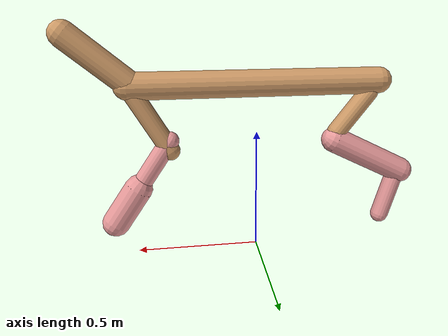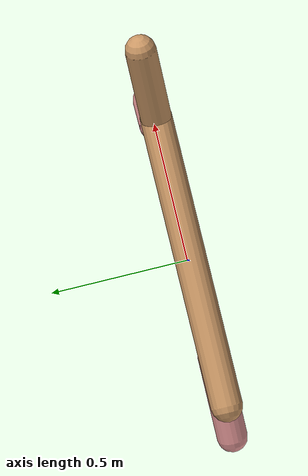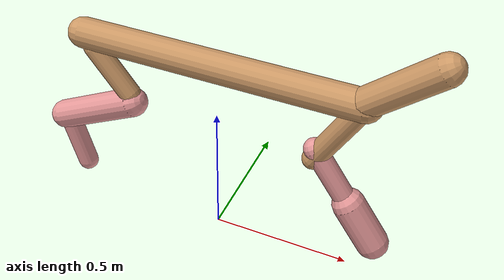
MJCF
<?xml version="1.0" encoding="utf-8"?>
<mujoco model="cheetah">
	<compiler angle="radian" coordinate="local" inertiafromgeom="true" settotalmass="14"></compiler>
	<default>
		<joint armature=".1" damping="0.010273685319781877" limited="true" solimplimit="0 .8 .03" solreflimit=".02 1" stiffness="8.665681657252332"></joint>
		<geom conaffinity="0" condim="3" contype="1" friction="0.8703187810477577 0.07612955160728259 0.10697934570410639" rgba="0.8 0.6 .4 1" solimp="0.0 0.8 0.01" solref="0.02 1"></geom>
		<motor ctrllimited="true" ctrlrange="-1 1"></motor>
	</default>
	<size nstack="300000" nuser_geom="1"></size>
	<option gravity="0 0 -9.81" timestep="0.01"></option>
	<worldbody>
		<body name="torso" pos="0 0 .7">
			<joint armature="0" axis="1 0 0" damping="0.0" limited="false" name="ignorex" pos="0 0 0" stiffness="0.0" type="slide"></joint>
			<joint armature="0" axis="0 0 1" damping="0.0" limited="false" name="ignorez" pos="0 0 0" stiffness="0.0" type="slide"></joint>
			<joint armature="0" axis="0 1 0" damping="0.0" limited="false" name="ignorey" pos="0 0 0" stiffness="0.0" type="hinge"></joint>
			<geom fromto="-.5 0 0 .5 0 0" name="torso" size="0.05426691680335314" type="capsule"></geom>
			<geom axisangle="0 1 0 .87" name="head" pos=".6 0 .1" size="0.052460073602123396 0.14747933331017135" type="capsule"></geom>
			<body name="bthigh" pos="-.5 0 0">
				<joint axis="0 1 0" damping="6.476735107402284" name="bthigh" pos="0 0 0" range="-.52 1.05" stiffness="174.3106806107034" type="hinge"></joint>
				<geom axisangle="0 1 0 -3.8" name="bthigh" pos=".1 0 -.13" size="0.038934187155212144 0.10331285681432277" type="capsule"></geom>
				<body name="bshin" pos=".16 0 -.25">
					<joint axis="0 1 0" damping="3.200500054256073" name="bshin" pos="0 0 0" range="-.785 .785" stiffness="152.8804773386579" type="hinge"></joint>
					<geom axisangle="0 1 0 -2.03" name="bshin" pos="-.14 0 -.07" rgba="0.9 0.6 0.6 1" size="0.05344754765038982 0.16856001501289278" type="capsule"></geom>
					<body name="bfoot" pos="-.28 0 -.14">
						<joint axis="0 1 0" damping="3.576642062894079" name="bfoot" pos="0 0 0" range="-.4 .785" stiffness="123.20922732449523" type="hinge"></joint>
						<geom axisangle="0 1 0 -.27" name="bfoot" pos=".03 0 -.097" rgba="0.9 0.6 0.6 1" size="0.038271247938250236 0.11568383748541781" type="capsule"></geom>
						<inertial mass="10"></inertial>
					</body>
				</body>
			</body>
			<body name="fthigh" pos=".5 0 0">
				<joint axis="0 1 0" damping="4.712669958133166" name="fthigh" pos="0 0 0" range="-1.5 0.8" stiffness="232.97847313974572" type="hinge"></joint>
				<geom axisangle="0 1 0 .52" name="fthigh" pos="-.07 0 -.12" size="0.03866566662520347 0.16410066568271153" type="capsule"></geom>
				<body name="fshin" pos="-.14 0 -.24">
					<joint axis="0 1 0" damping="2.56298867923388" name="fshin" pos="0 0 0" range="-1.2 1.1" stiffness="129.46629527442101" type="hinge"></joint>
					<geom axisangle="0 1 0 -.6" name="fshin" pos=".065 0 -.09" rgba="0.9 0.6 0.6 1" size="0.0382967123216875 0.13158068968719938" type="capsule"></geom>
					<body name="ffoot" pos=".13 0 -.18">
						<joint axis="0 1 0" damping="1.7579456246722838" name="ffoot" pos="0 0 0" range="-3.1 -0.3" stiffness="46.045365742543" type="hinge"></joint>
						<geom axisangle="0 1 0 -.6" name="ffoot" pos=".045 0 -.07" rgba="0.9 0.6 0.6 1" size="0.05721647826348106 0.08837885072508399" type="capsule"></geom>
						<inertial mass="10"></inertial>
					</body>
				</body>
			</body>
		</body>
	</worldbody>
	<actuator>
		<motor gear="120" joint="bthigh" name="bthigh"></motor>
		<motor gear="90" joint="bshin" name="bshin"></motor>
		<motor gear="60" joint="bfoot" name="bfoot"></motor>
		<motor gear="120" joint="fthigh" name="fthigh"></motor>
		<motor gear="60" joint="fshin" name="fshin"></motor>
		<motor gear="30" joint="ffoot" name="ffoot"></motor>
	</actuator>
</mujoco>
